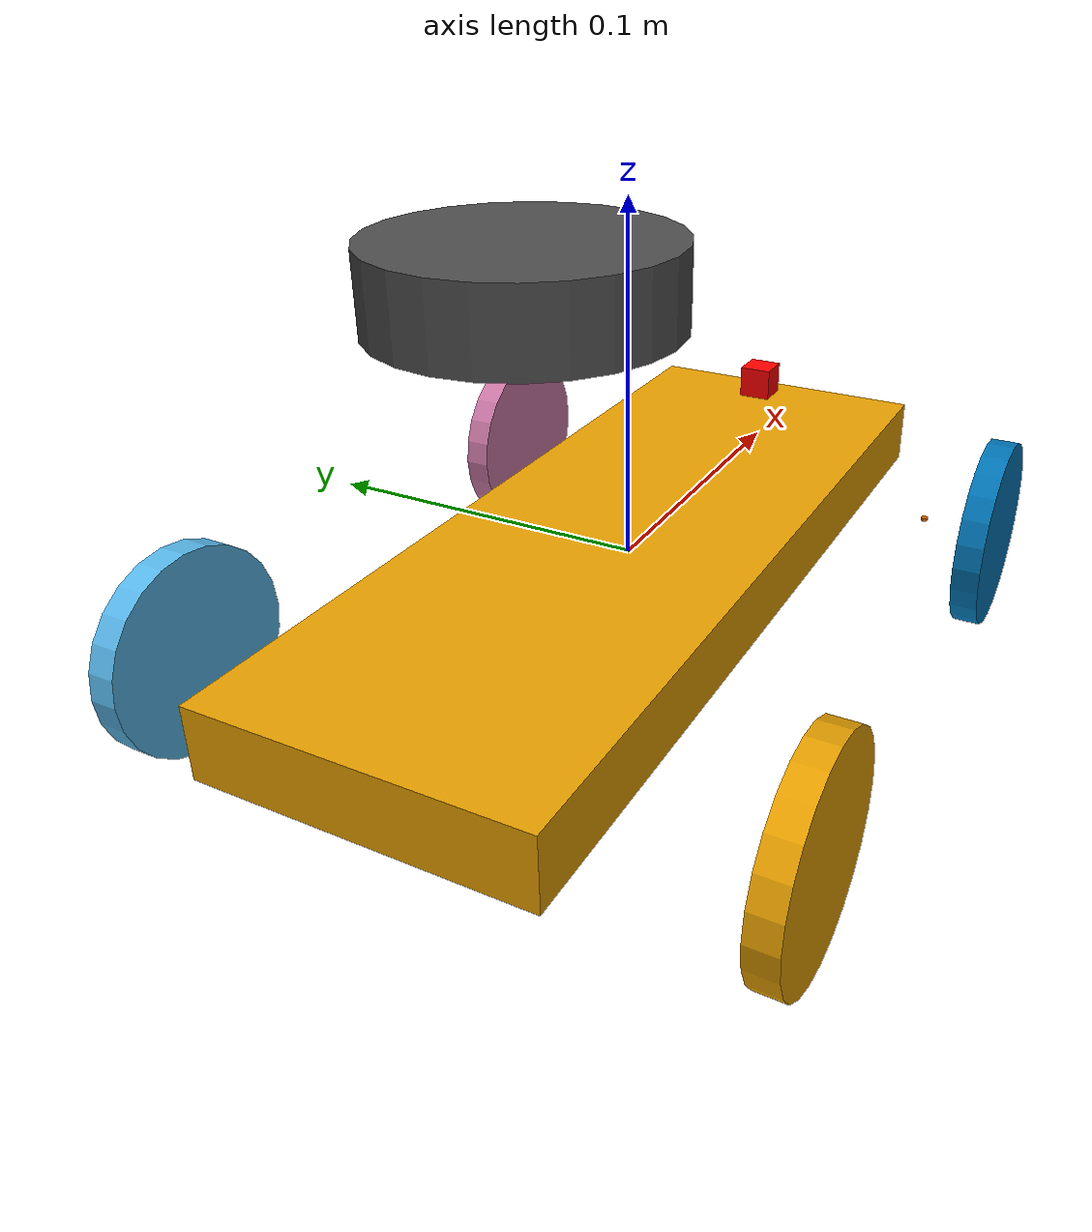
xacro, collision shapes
<?xml version="1.0"?>

<robot name="hamster" xmlns:xacro="http://www.ros.org/wiki/xacro">

	<xacro:include filename="$(find hamster_vehicle_description)/urdf/front_wheel.urdf.xacro" />
	<xacro:include filename="$(find hamster_vehicle_description)/urdf/rear_wheel.urdf.xacro" />

	<xacro:macro name="solid_cuboid_inertia" params="w h d m">
	<inertia  ixx="${m*(h*h+d*d)/12}" ixy = "0" ixz = "0"
						iyy="${m*(w*w+d*d)/12}" iyz = "0"
						izz="${m*(w*w+h*h)/12}" />
	</xacro:macro>

	<xacro:arg name="agent" default="agent1" />
	<xacro:arg name="robot_version" default="V6"/>
	<xacro:arg name="is_publishTF" default="true"/>
	<xacro:arg name="tf_target_topic" default="odom/raw"/>
	<xacro:arg name="is_simulation" default="true"/>

	<xacro:property name="version" value="$(arg robot_version)"/>
	<xacro:property name="simulation" value="$(arg is_simulation)"/>

	<material name="red">
		<color rgba="${255/255} ${0/255} ${0/255} 1.0"/>
	</material>

	<link name="$(arg agent)/base_link">
		<inertial>
			<mass value="3.0" />
			<xacro:solid_cuboid_inertia w="0.1" h="0.1" d="0.3" m="3.0"/>
		</inertial>
		<visual>
			<geometry>
				<mesh filename="package://hamster_vehicle_description/meshes/shell.dae" />
			</geometry>
		</visual>
		<collision>
			<geometry>
				<box size="0.25 0.09 0.02" />
			</geometry>
		</collision>
	</link>

	<link name="$(arg agent)/imu_link">
		<inertial>
			<mass value="0.01" />
			<xacro:solid_cuboid_inertia w="0.05" h="0.05" d="0.07" m="0.01"/>
		</inertial>
		<visual>
			<geometry>
				<box size="0.01 0.01 0.01" />
			</geometry>
		</visual>
		</link>

	<joint name="imu_link_joint" type="fixed">
		<origin xyz="0 0 0" rpy="0 0 0" />
		<parent link="$(arg agent)/base_link" />
		<child  link="$(arg agent)/imu_link" />
	</joint>

	<joint name="hokuyo_joint" type="fixed">
		<axis xyz="0 1 0" />
		<xacro:if value="${simulation}">
			<origin xyz="-0.05 0 0.09" rpy="0 0 -3.14"/>
		</xacro:if>
		<xacro:unless value="${simulation}">
			<origin xyz="-0.05 0 0.09" rpy="0 0 0"/>
		</xacro:unless>
		<parent link="$(arg agent)/base_link"/>
		<child link="$(arg agent)/lidar_link"/>
	</joint>

	<joint name="camera_joint" type="fixed">
		<xacro:if value="${version == 'V7'}">
			<origin xyz="0.12673 0 0.028" rpy="0 0 0"/>
		</xacro:if>
		<xacro:if value="${version == 'V6'}">
			<origin xyz="0.1 0 0.02" rpy="0 0 0"/>
		</xacro:if>
		<parent link="$(arg agent)/base_link"/>
		<child link="$(arg agent)/camera_link"/>
	</joint>

	<xacro:if value="${version == 'V7'}">
		<link name="$(arg agent)/camera_optical_frame_link"/>
			<joint name="camera_optical_joint" type="fixed">
				<origin xyz="0 0 0" rpy="-1.57 0 -1.57"/>
				<parent link="$(arg agent)/camera_link"/>
				<child link="$(arg agent)/camera_optical_frame_link"/>
			</joint>
	</xacro:if>

	<!-- Hokuyo Laser -->
	<link name="$(arg agent)/lidar_link">
		<visual>
			<geometry>
				<mesh filename="package://hamster_vehicle_description/meshes/A2_lidar.dae" />
			</geometry>
		</visual>
		<collision>
			<origin xyz="0 0 0" rpy="0 0 0" />
			<geometry>
				<cylinder length="0.02" radius="0.037" />
			</geometry>
		</collision>
	</link>

	<link name="$(arg agent)/camera_link">
		<collision>
			<geometry>
		<box size="0.01 0.01 0.01"/>
			</geometry>
		</collision>
		<visual>
			<geometry>
				<xacro:if value="${version == 'V7'}">
				<mesh filename="package://hamster_vehicle_description/meshes/d415.stl" />
				</xacro:if>
				<xacro:if value="${version == 'V6'}">
				<mesh filename="package://hamster_vehicle_description/meshes/camera.stl" />
				</xacro:if>
			</geometry>
			<material name="red"/>
		</visual>
		<inertial>
			<mass value="1e-5" />
			<inertia ixx="1e-6" ixy="0" ixz="0" iyy="1e-6" iyz="0" izz="1e-6" />
		</inertial>
	</link>

	<xacro:front_wheel agent="$(arg agent)/" fr="front" lr="right" parent="$(arg agent)/base_link" origin_x="0.08" origin_y="-0.086" origin_z="-0.01"/>
	<xacro:front_wheel agent="$(arg agent)/" fr="front" lr="left" parent="$(arg agent)/base_link" origin_x="0.08" origin_y="0.086" origin_z="-0.01"/>
	<xacro:rear_wheel agent="$(arg agent)/" fr="rear" lr="right" parent="$(arg agent)/base_link" origin_x="-0.085" origin_y="-0.086" origin_z="-0.01"/>
	<xacro:rear_wheel agent="$(arg agent)/" fr="rear" lr="left" parent="$(arg agent)/base_link" origin_x="-0.085" origin_y="0.086" origin_z="-0.01"/>

	<gazebo>
		<plugin name="gazebo_ros_control" filename="libgazebo_ros_control.so">
			<robotNamespace>$(arg agent)</robotNamespace>
			<robotSimType>gazebo_ros_control/DefaultRobotHWSim</robotSimType>
			<legacyModeNS>true</legacyModeNS>
		</plugin>
	</gazebo>

	<gazebo>
		<plugin name="gazebo_ackermann_drive" filename="libgazebo_ackermann_drive.so">
			<robotNamespace>$(arg agent)</robotNamespace>
			<wheelRadius>0.029</wheelRadius>
			<wheelSeparation>0.17</wheelSeparation>
			<wheelBase>0.166</wheelBase>
			<frontLeftWheelJoint>front_left_wheel_joint</frontLeftWheelJoint>
			<frontRightWheelJoint>front_right_wheel_joint</frontRightWheelJoint>
			<reartLeftWheelJoint>rear_left_wheel_joint</reartLeftWheelJoint>
			<rearRightWheelJoint>rear_right_wheel_joint</rearRightWheelJoint>
			<frontRightWheelSteeringJoint>front_right_wheel_steering_joint</frontRightWheelSteeringJoint>
			<frontLeftWheelSteeringJoint>front_left_wheel_steering_joint</frontLeftWheelSteeringJoint>
			<torque>0.01</torque>
			<baseFrame>base_link</baseFrame>
			<odomFrame>odom</odomFrame>
			<odomTopic>odom/raw</odomTopic>
			<groundTruthTopic_>odom/ground_truth</groundTruthTopic_>
			<robotBaseLink>$(arg agent)/base_link</robotBaseLink>
			<driveTopic>ackermann_cmd</driveTopic>
			<odomNoiseMean>0.0</odomNoiseMean>
			<odomNoiseStddev>0.02</odomNoiseStddev>
			<is_tfBroadcasting>$(arg is_publishTF)</is_tfBroadcasting>
			<tf_target>$(arg tf_target_topic)</tf_target>
			<minSpeed>0.1</minSpeed>
			<maxSpeed>1.2</maxSpeed>
		</plugin>
	</gazebo>

	<gazebo reference="$(arg agent)/imu_link">
		<gravity>true</gravity>
		<sensor name="imu_sensor" type="imu">
			<always_on>true</always_on>
			<update_rate>100</update_rate>
			<visualize>true</visualize>
			<topic>__default_topic__</topic>
			<plugin filename="libgazebo_ros_imu_sensor.so" name="imu_plugin">
				<topicName>imu/raw</topicName>
				<bodyName>$(arg agent)/imu_link</bodyName>
				<updateRateHZ>10.0</updateRateHZ>
				<gaussianNoise>0.01</gaussianNoise>
				<xyzOffset>0 0 0</xyzOffset>
				<rpyOffset>0 0 0</rpyOffset>
				<frameName>$(arg agent)/imu_link</frameName>
			</plugin>
		</sensor>
	</gazebo>

	<gazebo reference="$(arg agent)/lidar_link">
		<sensor type="ray" name="head_hokuyo_sensor">
			<pose>0 0 0 0 0 0</pose>
			<visualize>false</visualize>
			<update_rate>10</update_rate>
			<ray>
				<scan>
					<horizontal>
						<samples>360</samples>
						<resolution>1</resolution>
						<min_angle>-3.1415</min_angle>
						<max_angle>3.1415</max_angle>
					</horizontal>
				</scan>
				<range>
					<min>0.10</min>
					<max>12.0</max>
					<resolution>0.01</resolution>
				</range>
				<noise>
					<type>gaussian</type>
					<mean>0.0</mean>
					<stddev>0.01</stddev>
				</noise>
			</ray>
			<plugin name="gazebo_ros_head_hokuyo_controller" filename="libgazebo_ros_laser.so">
				<topicName>scan</topicName>
				<frameName>$(arg agent)/lidar_link</frameName>
			</plugin>
		</sensor>
		<material>Gazebo/DarkGrey</material>
	</gazebo>

	<xacro:if value="${version == 'V7'}">
		<gazebo reference="$(arg agent)/camera_link">
			<sensor name="depth_camera" type="depth">
				<update_rate>15</update_rate>
				<camera>
					<horizontal_fov>1.5882496</horizontal_fov>
					<image>
						<width>640</width>
						<height>480</height>
						<format>B8G8R8</format>
					</image>
					<clip>
						<near>0.05</near>
						<far>200</far>
					</clip>
				</camera>
				<plugin name="camera_controller" filename="libgazebo_ros_openni_kinect.so">
					<baseline>0.2</baseline>
					<alwaysOn>true</alwaysOn>
					<updateRate>30.0</updateRate>
					<cameraName></cameraName>
					<imageTopicName>camera/color/image_raw</imageTopicName>
					<cameraInfoTopicName>camera/color/camera_info</cameraInfoTopicName>
					<depthImageTopicName>camera/depth/image_raw</depthImageTopicName>
					<depthImageInfoTopicName>camera/depth/camera_info</depthImageInfoTopicName>
					<pointCloudTopicName>camera/depth/points</pointCloudTopicName>
					<frameName>camera_optical_frame_link</frameName>
					<pointCloudCutoff>0.5</pointCloudCutoff>
					<pointCloudCutoffMax>5.0</pointCloudCutoffMax>
					<distortionK1>0.00000001</distortionK1>
					<distortionK2>0.00000001</distortionK2>
					<distortionK3>0.00000001</distortionK3>
					<distortionT1>0.00000001</distortionT1>
					<distortionT2>0.00000001</distortionT2>
					<CxPrime>0</CxPrime>
					<Cx>0</Cx>
					<Cy>0</Cy>
					<focalLength>0</focalLength>
					<hackBaseline>0</hackBaseline>
				</plugin>
			</sensor>
		</gazebo>
	</xacro:if>

	<xacro:if value="${version == 'V6'}">
		<gazebo reference="$(arg agent)/camera_link">
			<sensor type="camera" name="camera1">
				<update_rate>30.0</update_rate>
				<camera name="head">
					<horizontal_fov>1.3962634</horizontal_fov>
					<image>
						<width>800</width>
						<height>800</height>
						<format>R8G8B8</format>
					</image>
					<clip>
						<near>0.02</near>
						<far>300</far>
					</clip>
					<noise>
						<type>gaussian</type>
						<!-- Noise is sampled independently per pixel on each frame.
								 That pixel's noise value is added to each of its color
								 channels, which at that point lie in the range [0,1]. -->
						<mean>0.0</mean>
						<stddev>0.007</stddev>
					</noise>
				</camera>
				<plugin name="camera_controller" filename="libgazebo_ros_camera.so">
					<alwaysOn>true</alwaysOn>
					<updateRate>0.0</updateRate>
					<cameraName></cameraName>
					<imageTopicName>image_raw</imageTopicName>
					<cameraInfoTopicName>camera_info</cameraInfoTopicName>
					<frameName>camera_link</frameName>
					<hackBaseline>0.07</hackBaseline>
					<distortionK1>0.0</distortionK1>
					<distortionK2>0.0</distortionK2>
					<distortionK3>0.0</distortionK3>
					<distortionT1>0.0</distortionT1>
					<distortionT2>0.0</distortionT2>
				</plugin>
			</sensor>
		</gazebo>
	</xacro:if>

</robot>

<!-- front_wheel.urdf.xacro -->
<robot name="front_wheel" xmlns:xacro="http://www.ros.org/wiki/xacro">

  <!-- Wheels -->
  <xacro:property name="wheel_radius" value="0.029" />
  <xacro:property name="wheel_height" value="0.02" />
  <xacro:property name="wheel_mass" value="0.1" /> <!-- in kg-->

  <xacro:macro name="cylinder_inertia" params="m r h">
    <inertia  ixx="${m*(3*r*r+h*h)/12}" ixy="0" ixz="0"
              iyy="${m*(3*r*r+h*h)/12}" iyz="0"
              izz="${m*r*r/2}" />
  </xacro:macro>

  <xacro:macro name="front_wheel" params="agent fr lr parent origin_x origin_y origin_z"> <!--fr : front, rear ; lr: left, right -->
    <link name="${agent}${fr}_${lr}_wheel">
      <visual>
        <origin xyz="0 0 0" rpy="1.57 0 0" />
        <geometry>
          <mesh filename="package://hamster_vehicle_description/meshes/hamster_wheel.dae" />
        </geometry>
      </visual>
      <collision>
        <origin xyz="0 0 0" rpy="1.57 0 0" />
        <geometry>
          <cylinder length="0.008" radius="${wheel_radius}" />
        </geometry>
      </collision>
      <inertial>
        <mass value="${wheel_mass}" />
        <origin xyz="0 0 0" rpy="1.57 0 0" />
        <xacro:cylinder_inertia  m="${wheel_mass}" r="${wheel_radius}" h="${wheel_height}" />
      </inertial>
    </link>

    <link name="${agent}${fr}_${lr}_wheel_steering">
      <collision>
        <origin xyz="0 0.02 0" rpy="0 0 0" />
        <geometry>
          <cylinder length="0.001" radius="0.001" />
        </geometry>
      </collision>
      <inertial>
        <mass value="0.1" />
        <origin xyz="0 0 0" rpy="0 0 0" />
        <xacro:cylinder_inertia  m="0.1" r="0.01" h="0.01" />
      </inertial>
    </link>

    <gazebo reference="${agent}${fr}_${lr}_wheel">
      <mu1>0.7</mu1>
      <mu2>0.7</mu2>
      <kp>500000.0</kp>
      <kd>10.0</kd>
      <minDepth>0.002</minDepth>
      <maxVel>0.1</maxVel>
      <fdir1>1 0 0</fdir1>
      <maxContacts>20</maxContacts>
    </gazebo>

    <joint name="${fr}_${lr}_wheel_joint" type="continuous">
      <parent link="${agent}${fr}_${lr}_wheel_steering"/>
      <child link="${agent}${fr}_${lr}_wheel"/>
      <origin xyz="0 0 0" rpy="0 0 0" />
      <axis xyz="0 1 0" rpy="0 0 0" />
      <limit effort="-1" velocity="-1"/>
    </joint>

    <joint name="${fr}_${lr}_wheel_steering_joint" type="continuous">
      <parent link="${parent}"/>
      <child link="${agent}${fr}_${lr}_wheel_steering"/>
      <origin xyz="${origin_x} ${origin_y} ${origin_z}" rpy="0 0 0" />
      <axis xyz="0 0 1" rpy="0 0 0" />
      <limit effort="30" velocity="1.5" lower="-0.2967" upper="0.2967"/>
    </joint>

  </xacro:macro>
</robot>

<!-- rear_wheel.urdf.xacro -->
<robot name="rear_wheel" xmlns:xacro="http://www.ros.org/wiki/xacro">

  <!-- Wheels -->
  <xacro:property name="wheel_radius" value="0.029" />
  <xacro:property name="wheel_height" value="0.02" />
  <xacro:property name="wheel_mass" value="0.1" /> <!-- in kg-->

  <xacro:macro name="cylinder_inertia" params="m r h">
    <inertia  ixx="${m*(3*r*r+h*h)/12}" ixy="0" ixz="0"
              iyy="${m*(3*r*r+h*h)/12}" iyz="0"
              izz="${m*r*r/2}" />
  </xacro:macro>

  <xacro:macro name="rear_wheel" params="agent fr lr parent origin_x origin_y origin_z"> <!--fr : front, rear ; lr: left, right -->
    <link name="${agent}${fr}_${lr}_wheel">
      <visual>
        <origin xyz="0 0 0" rpy="1.57 0 0" />
        <geometry>
          <mesh filename="package://hamster_vehicle_description/meshes/hamster_wheel.dae" />
        </geometry>
      </visual>
      <collision>
        <origin xyz="0 0 0" rpy="1.57 0 0" />
        <geometry>
          <cylinder length="0.008" radius="${wheel_radius}" />
        </geometry>
      </collision>
      <inertial>
        <mass value="${wheel_mass}" />
        <origin xyz="0 0 0" rpy="1.57 0 0" />
        <xacro:cylinder_inertia  m="${wheel_mass}" r="${wheel_radius}" h="${wheel_height}" />
      </inertial>
    </link>

    <gazebo reference="${agent}${fr}_${lr}_wheel">
      <mu1>0.7</mu1>
      <mu2>0.7</mu2>
      <kp>500000.0</kp>
      <kd>10.0</kd>
      <minDepth>0.002</minDepth>
      <maxVel>0.1</maxVel>
      <fdir1>1 0 0</fdir1>
      <maxContacts>20</maxContacts>
    </gazebo>

    <joint name="${fr}_${lr}_wheel_joint" type="continuous">
      <parent link="${parent}"/>
      <child link="${agent}${fr}_${lr}_wheel"/>
      <origin xyz="${origin_x} ${origin_y} ${origin_z}" rpy="0 0 0" />
      <axis xyz="0 1 0" rpy="0 0 0" />
      <limit effort="-1" velocity="-1"/>
    </joint>

  </xacro:macro>
</robot>
